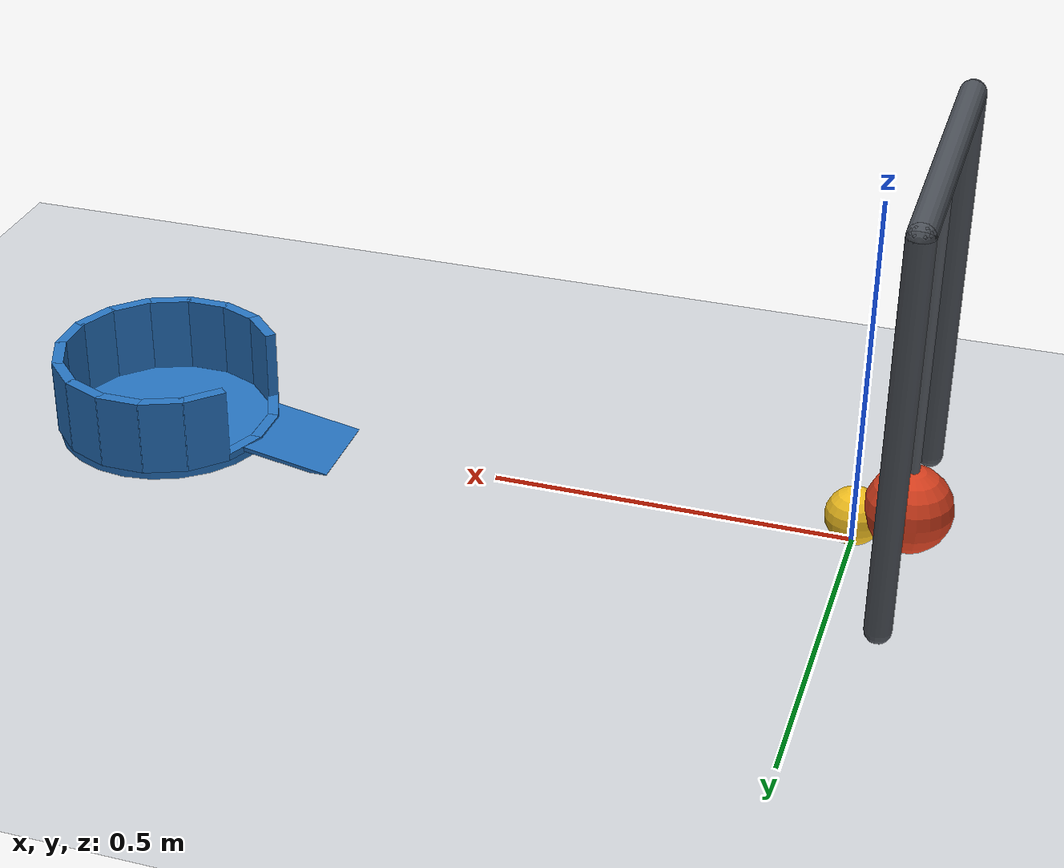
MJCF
<mujoco model="pendulum_ball_cup">
  <compiler angle="degree" autolimits="true"/>
  <option timestep="0.002" gravity="0 0 -9.81" integrator="implicitfast" solver="Newton" iterations="80" cone="elliptic"/>

  <visual>
    <headlight ambient="0.35 0.35 0.35" diffuse="0.65 0.65 0.65" specular="0.2 0.2 0.2"/>
  </visual>

  <worldbody>
    <light name="overhead" pos="0.4 -1.5 3" dir="0 0 -1"/>
    <camera name="overview" pos="1.7 -2.7 1.7" xyaxes="0.92 0.39 0 -0.19 0.45 0.87"/>

    <geom name="floor" type="plane" size="4 3 0.1" rgba="0.82 0.83 0.85 1" condim="6" friction="0.7 0.005 0.0002" solref="0.008 1"/>

    <!-- The support is visual only; the hinge supplies the fixed suspension. -->
    <body name="support">
      <geom name="support_left" type="capsule" fromto="-0.07 -0.22 0.02 -0.07 -0.22 0.565" size="0.018" rgba="0.3 0.32 0.35 1" contype="0" conaffinity="0"/>
      <geom name="support_right" type="capsule" fromto="-0.07 0.22 0.02 -0.07 0.22 0.565" size="0.018" rgba="0.3 0.32 0.35 1" contype="0" conaffinity="0"/>
      <geom name="support_crossbar" type="capsule" fromto="-0.07 -0.22 0.565 -0.07 0.22 0.565" size="0.018" rgba="0.3 0.32 0.35 1" contype="0" conaffinity="0"/>
    </body>

    <!-- A positive initial hinge angle raises the bob to the left. -->
    <body name="pendulum" pos="-0.07 0 0.565">
      <joint name="pendulum_hinge" type="hinge" axis="0 1 0" damping="0.012"/>
      <geom name="pendulum_rod" type="capsule" fromto="0 0 0 0 0 -0.5" size="0.009" mass="0.025" rgba="0.35 0.37 0.4 1" friction="0.3 0.003 0.0001"/>
      <geom name="pendulum_bob" type="sphere" pos="0 0 -0.5" size="0.06" mass="0.2" rgba="0.85 0.25 0.12 1" condim="6" friction="0.4 0.003 0.0001" solref="0.006 1"/>
    </body>

    <body name="ball" pos="0 0 0.04">
      <freejoint name="ball_free"/>
      <geom name="ball" type="sphere" size="0.04" mass="0.1" rgba="0.95 0.75 0.12 1" condim="6" friction="0.7 0.005 0.0002" solref="0.006 1"/>
    </body>

    <body name="cup" pos="1 0 0">
      <geom name="cup_bottom" type="cylinder" pos="0 0 0.006" size="0.158 0.006" rgba="0.15 0.45 0.75 1" condim="6" friction="0.7 0.005 0.0002" solref="0.012 1"/>
      <geom name="cup_entry_ramp" type="box" pos="-0.205 0 0.008" euler="0 -9.7 0" size="0.065 0.065 0.003" rgba="0.15 0.45 0.75 1" condim="6" friction="0.7 0.005 0.0002" solref="0.012 1"/>

      <geom name="cup_wall_00" type="box" pos="0.15 0 0.067" euler="0 0 90" size="0.032 0.008 0.055" rgba="0.15 0.45 0.75 1" solref="0.012 1"/>
      <geom name="cup_wall_01" type="box" pos="0.138582 0.057403 0.067" euler="0 0 112.5" size="0.032 0.008 0.055" rgba="0.15 0.45 0.75 1" solref="0.012 1"/>
      <geom name="cup_wall_02" type="box" pos="0.106066 0.106066 0.067" euler="0 0 135" size="0.032 0.008 0.055" rgba="0.15 0.45 0.75 1" solref="0.012 1"/>
      <geom name="cup_wall_03" type="box" pos="0.057403 0.138582 0.067" euler="0 0 157.5" size="0.032 0.008 0.055" rgba="0.15 0.45 0.75 1" solref="0.012 1"/>
      <geom name="cup_wall_04" type="box" pos="0 0.15 0.067" euler="0 0 180" size="0.032 0.008 0.055" rgba="0.15 0.45 0.75 1" solref="0.012 1"/>
      <geom name="cup_wall_05" type="box" pos="-0.057403 0.138582 0.067" euler="0 0 202.5" size="0.032 0.008 0.055" rgba="0.15 0.45 0.75 1" solref="0.012 1"/>
      <geom name="cup_wall_06" type="box" pos="-0.106066 0.106066 0.067" euler="0 0 225" size="0.032 0.008 0.055" rgba="0.15 0.45 0.75 1" solref="0.012 1"/>

      <geom name="cup_front_rim_07" type="box" pos="-0.138582 0.057403 0.017" euler="0 0 247.5" size="0.032 0.008 0.005" rgba="0.15 0.45 0.75 1" solref="0.012 1"/>
      <geom name="cup_front_rim_08" type="box" pos="-0.15 0 0.017" euler="0 0 270" size="0.032 0.008 0.005" rgba="0.15 0.45 0.75 1" solref="0.012 1"/>
      <geom name="cup_front_rim_09" type="box" pos="-0.138582 -0.057403 0.017" euler="0 0 292.5" size="0.032 0.008 0.005" rgba="0.15 0.45 0.75 1" solref="0.012 1"/>

      <geom name="cup_wall_10" type="box" pos="-0.106066 -0.106066 0.067" euler="0 0 315" size="0.032 0.008 0.055" rgba="0.15 0.45 0.75 1" solref="0.012 1"/>
      <geom name="cup_wall_11" type="box" pos="-0.057403 -0.138582 0.067" euler="0 0 337.5" size="0.032 0.008 0.055" rgba="0.15 0.45 0.75 1" solref="0.012 1"/>
      <geom name="cup_wall_12" type="box" pos="0 -0.15 0.067" euler="0 0 0" size="0.032 0.008 0.055" rgba="0.15 0.45 0.75 1" solref="0.012 1"/>
      <geom name="cup_wall_13" type="box" pos="0.057403 -0.138582 0.067" euler="0 0 22.5" size="0.032 0.008 0.055" rgba="0.15 0.45 0.75 1" solref="0.012 1"/>
      <geom name="cup_wall_14" type="box" pos="0.106066 -0.106066 0.067" euler="0 0 45" size="0.032 0.008 0.055" rgba="0.15 0.45 0.75 1" solref="0.012 1"/>
      <geom name="cup_wall_15" type="box" pos="0.138582 -0.057403 0.067" euler="0 0 67.5" size="0.032 0.008 0.055" rgba="0.15 0.45 0.75 1" solref="0.012 1"/>
    </body>
  </worldbody>

  <keyframe>
    <key name="start" qpos="0.65 0 0 0.04 1 0 0 0" qvel="0 0 0 0 0 0 0"/>
  </keyframe>
</mujoco>
